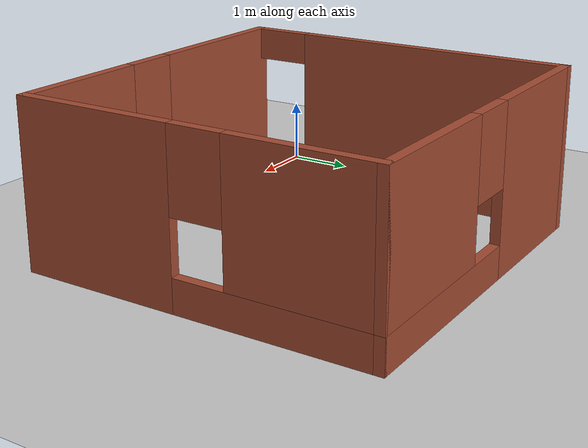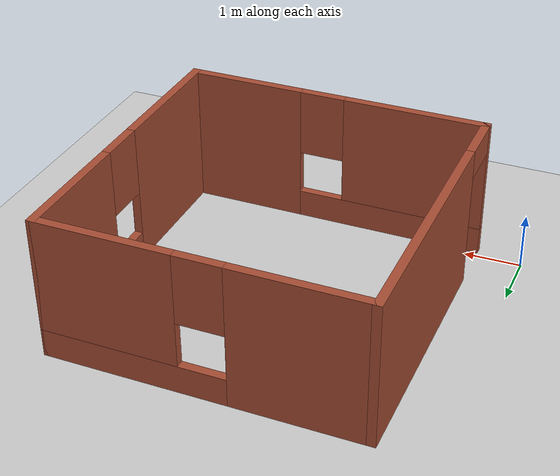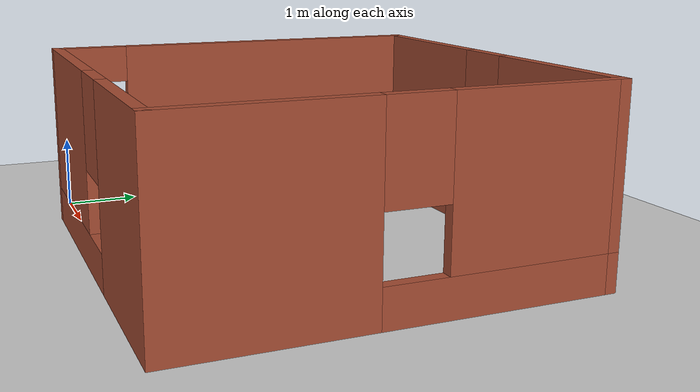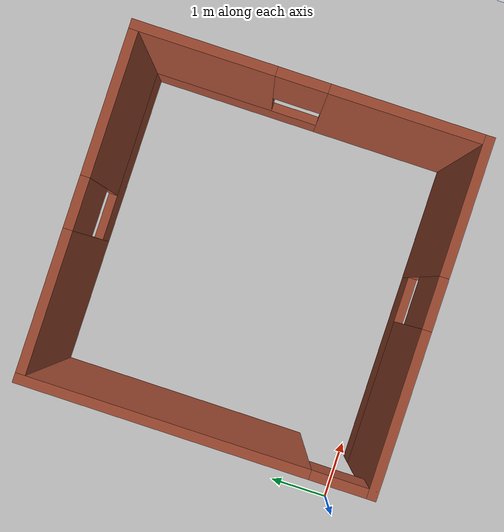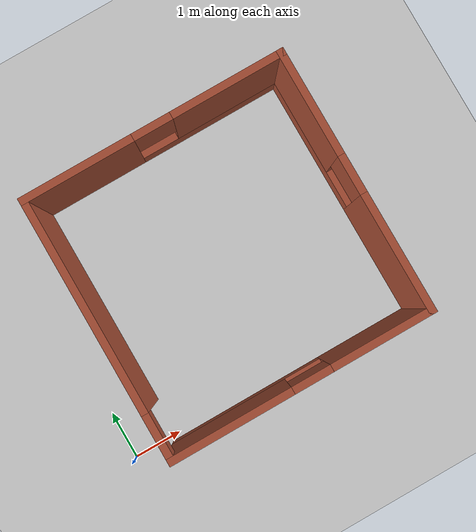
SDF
<sdf version="1.7">
 <world name="default">
  <light name="sun" type="directional">
   <pose>0 0 10 0 -0 0</pose>
   <diffuse>0.8 0.8 0.8 1</diffuse>
   <specular>0.2 0.2 0.2 1</specular>
   <attenuation>
    <range>1000</range>
    <constant>0.9</constant>
    <linear>0.01</linear>
    <quadratic>0.001</quadratic>
   </attenuation>
   <direction>-0.5 0.1 -0.9</direction>
   <spot><inner_angle>0</inner_angle><outer_angle>0</outer_angle><falloff>0</falloff></spot>
  </light>
  <model name="ground_plane">
   <static>1</static>
   <link name="link">
    <collision name="collision">
     <geometry><plane><normal>0 0 1</normal><size>100 100</size></plane></geometry>
     <surface>
      <contact><collide_bitmask>65535</collide_bitmask></contact>
      <friction><ode><mu>100</mu><mu2>50</mu2></ode></friction>
     </surface>
    </collision>
    <visual name="visual">
     <cast_shadows>0</cast_shadows>
     <geometry><plane><normal>0 0 1</normal><size>100 100</size></plane></geometry>
     <material>
      <script><uri>file://media/materials/scripts/gazebo.material</uri><name>Gazebo/Grey</name></script>
     </material>
    </visual>
   </link>
  </model>
  <gravity>0 0 -9.8</gravity>
  <magnetic_field>6e-06 2.3e-05 -4.2e-05</magnetic_field>
  <atmosphere type="adiabatic"/>
  <physics type="ode">
   <max_step_size>0.001</max_step_size>
   <real_time_factor>1</real_time_factor>
   <real_time_update_rate>1000</real_time_update_rate>
  </physics>
  <scene><ambient>0.4 0.4 0.4 1</ambient><background>0.7 0.7 0.7 1</background><shadows>1</shadows></scene>
  <spherical_coordinates>
   <surface_model>EARTH_WGS84</surface_model>
   <latitude_deg>0</latitude_deg>
   <longitude_deg>0</longitude_deg>
   <elevation>0</elevation>
   <heading_deg>0</heading_deg>
  </spherical_coordinates>
  <model name="Untitled2">
   <pose>3.1475 2.505 0 0 -0 0</pose>
   <link name="Wall_0">
    <pose>0.3975 -2.675 0 0 -0 3.14159</pose>
    <visual name="Wall_0_Visual_0">
     <pose>-1.68188 0 1.25 0 -0 0</pose>
     <geometry><box><size>2.13624 0.15 2.5</size></box></geometry>
     <material>
      <script><uri>file://media/materials/scripts/gazebo.material</uri><name>Gazebo/Bricks</name></script>
      <ambient>1 1 1 1</ambient>
     </material>
     <meta><layer>0</layer></meta>
    </visual>
    <collision name="Wall_0_Collision_0">
     <geometry><box><size>2.13624 0.15 2.5</size></box></geometry>
     <pose>-1.68188 0 1.25 0 -0 0</pose>
    </collision>
    <visual name="Wall_0_Visual_1">
     <pose>1.06812 0 0.25 0 -0 0</pose>
     <geometry><box><size>3.36376 0.15 0.5</size></box></geometry>
     <material>
      <script><uri>file://media/materials/scripts/gazebo.material</uri><name>Gazebo/Bricks</name></script>
      <ambient>1 1 1 1</ambient>
     </material>
     <meta><layer>0</layer></meta>
    </visual>
    <collision name="Wall_0_Collision_1">
     <geometry><box><size>3.36376 0.15 0.5</size></box></geometry>
     <pose>1.06812 0 0.25 0 -0 0</pose>
    </collision>
    <visual name="Wall_0_Visual_2">
     <pose>1.46812 0 1.5 0 -0 0</pose>
     <geometry><box><size>2.56376 0.15 2</size></box></geometry>
     <material>
      <script><uri>file://media/materials/scripts/gazebo.material</uri><name>Gazebo/Bricks</name></script>
      <ambient>1 1 1 1</ambient>
     </material>
     <meta><layer>0</layer></meta>
    </visual>
    <collision name="Wall_0_Collision_2">
     <geometry><box><size>2.56376 0.15 2</size></box></geometry>
     <pose>1.46812 0 1.5 0 -0 0</pose>
    </collision>
    <visual name="Wall_0_Visual_3">
     <pose>-0.213757 0 1.9 0 -0 0</pose>
     <geometry><box><size>0.8 0.15 1.2</size></box></geometry>
     <material>
      <script><uri>file://media/materials/scripts/gazebo.material</uri><name>Gazebo/Bricks</name></script>
      <ambient>1 1 1 1</ambient>
     </material>
     <meta><layer>0</layer></meta>
    </visual>
    <collision name="Wall_0_Collision_3">
     <geometry><box><size>0.8 0.15 1.2</size></box></geometry>
     <pose>-0.213757 0 1.9 0 -0 0</pose>
    </collision>
   </link>
   <link name="Wall_2">
    <pose>3.0725 0 0 0 -0 1.5708</pose>
    <visual name="Wall_2_Visual_0">
     <pose>-1.50737 0 1.25 0 -0 0</pose>
     <geometry><box><size>2.48526 0.15 2.5</size></box></geometry>
     <material>
      <script><uri>file://media/materials/scripts/gazebo.material</uri><name>Gazebo/Bricks</name></script>
      <ambient>1 1 1 1</ambient>
     </material>
     <meta><layer>0</layer></meta>
    </visual>
    <collision name="Wall_2_Collision_0">
     <geometry><box><size>2.48526 0.15 2.5</size></box></geometry>
     <pose>-1.50737 0 1.25 0 -0 0</pose>
    </collision>
    <visual name="Wall_2_Visual_1">
     <pose>1.24263 0 0.25 0 -0 0</pose>
     <geometry><box><size>3.01474 0.15 0.5</size></box></geometry>
     <material>
      <script><uri>file://media/materials/scripts/gazebo.material</uri><name>Gazebo/Bricks</name></script>
      <ambient>1 1 1 1</ambient>
     </material>
     <meta><layer>0</layer></meta>
    </visual>
    <collision name="Wall_2_Collision_1">
     <geometry><box><size>3.01474 0.15 0.5</size></box></geometry>
     <pose>1.24263 0 0.25 0 -0 0</pose>
    </collision>
    <visual name="Wall_2_Visual_2">
     <pose>1.64263 0 1.5 0 -0 0</pose>
     <geometry><box><size>2.21474 0.15 2</size></box></geometry>
     <material>
      <script><uri>file://media/materials/scripts/gazebo.material</uri><name>Gazebo/Bricks</name></script>
      <ambient>1 1 1 1</ambient>
     </material>
     <meta><layer>0</layer></meta>
    </visual>
    <collision name="Wall_2_Collision_2">
     <geometry><box><size>2.21474 0.15 2</size></box></geometry>
     <pose>1.64263 0 1.5 0 -0 0</pose>
    </collision>
    <visual name="Wall_2_Visual_3">
     <pose>0.135263 0 1.9 0 -0 0</pose>
     <geometry><box><size>0.8 0.15 1.2</size></box></geometry>
     <material>
      <script><uri>file://media/materials/scripts/gazebo.material</uri><name>Gazebo/Bricks</name></script>
      <ambient>1 1 1 1</ambient>
     </material>
     <meta><layer>0</layer></meta>
    </visual>
    <collision name="Wall_2_Collision_3">
     <geometry><box><size>0.8 0.15 1.2</size></box></geometry>
     <pose>0.135263 0 1.9 0 -0 0</pose>
    </collision>
   </link>
   <link name="Wall_4">
    <pose>-2.2775 0 0 0 -0 1.5708</pose>
    <visual name="Wall_4_Visual_0">
     <pose>-2.68823 0 1.25 0 -0 0</pose>
     <geometry><box><size>0.123533 0.15 2.5</size></box></geometry>
     <material>
      <script><uri>file://media/materials/scripts/gazebo.material</uri><name>Gazebo/Bricks</name></script>
      <ambient>1 1 1 1</ambient>
     </material>
     <meta><layer>0</layer></meta>
    </visual>
    <collision name="Wall_4_Collision_0">
     <geometry><box><size>0.123533 0.15 2.5</size></box></geometry>
     <pose>-2.68823 0 1.25 0 -0 0</pose>
    </collision>
    <visual name="Wall_4_Visual_1">
     <pose>0.511766 0 1.25 0 -0 0</pose>
     <geometry><box><size>4.47647 0.15 2.5</size></box></geometry>
     <material>
      <script><uri>file://media/materials/scripts/gazebo.material</uri><name>Gazebo/Bricks</name></script>
      <ambient>1 1 1 1</ambient>
     </material>
     <meta><layer>0</layer></meta>
    </visual>
    <collision name="Wall_4_Collision_1">
     <geometry><box><size>4.47647 0.15 2.5</size></box></geometry>
     <pose>0.511766 0 1.25 0 -0 0</pose>
    </collision>
    <visual name="Wall_4_Visual_2">
     <pose>-2.17647 0 2.25 0 -0 0</pose>
     <geometry><box><size>0.9 0.15 0.5</size></box></geometry>
     <material>
      <script><uri>file://media/materials/scripts/gazebo.material</uri><name>Gazebo/Bricks</name></script>
      <ambient>1 1 1 1</ambient>
     </material>
     <meta><layer>0</layer></meta>
    </visual>
    <collision name="Wall_4_Collision_2">
     <geometry><box><size>0.9 0.15 0.5</size></box></geometry>
     <pose>-2.17647 0 2.25 0 -0 0</pose>
    </collision>
   </link>
   <link name="Wall_5">
    <pose>0.3975 2.675 0 0 -0 0</pose>
    <visual name="Wall_5_Visual_0">
     <pose>-1.58219 0 1.25 0 -0 0</pose>
     <geometry><box><size>2.33563 0.15 2.5</size></box></geometry>
     <material>
      <script><uri>file://media/materials/scripts/gazebo.material</uri><name>Gazebo/Bricks</name></script>
      <ambient>1 1 1 1</ambient>
     </material>
     <meta><layer>0</layer></meta>
    </visual>
    <collision name="Wall_5_Collision_0">
     <geometry><box><size>2.33563 0.15 2.5</size></box></geometry>
     <pose>-1.58219 0 1.25 0 -0 0</pose>
    </collision>
    <visual name="Wall_5_Visual_1">
     <pose>1.16781 0 0.25 0 -0 0</pose>
     <geometry><box><size>3.16437 0.15 0.5</size></box></geometry>
     <material>
      <script><uri>file://media/materials/scripts/gazebo.material</uri><name>Gazebo/Bricks</name></script>
      <ambient>1 1 1 1</ambient>
     </material>
     <meta><layer>0</layer></meta>
    </visual>
    <collision name="Wall_5_Collision_1">
     <geometry><box><size>3.16437 0.15 0.5</size></box></geometry>
     <pose>1.16781 0 0.25 0 -0 0</pose>
    </collision>
    <visual name="Wall_5_Visual_2">
     <pose>1.56781 0 1.5 0 -0 0</pose>
     <geometry><box><size>2.36437 0.15 2</size></box></geometry>
     <material>
      <script><uri>file://media/materials/scripts/gazebo.material</uri><name>Gazebo/Bricks</name></script>
      <ambient>1 1 1 1</ambient>
     </material>
     <meta><layer>0</layer></meta>
    </visual>
    <collision name="Wall_5_Collision_2">
     <geometry><box><size>2.36437 0.15 2</size></box></geometry>
     <pose>1.56781 0 1.5 0 -0 0</pose>
    </collision>
    <visual name="Wall_5_Visual_3">
     <pose>-0.014374 0 1.9 0 -0 0</pose>
     <geometry><box><size>0.8 0.15 1.2</size></box></geometry>
     <material>
      <script><uri>file://media/materials/scripts/gazebo.material</uri><name>Gazebo/Bricks</name></script>
      <ambient>1 1 1 1</ambient>
     </material>
     <meta><layer>0</layer></meta>
    </visual>
    <collision name="Wall_5_Collision_3">
     <geometry><box><size>0.8 0.15 1.2</size></box></geometry>
     <pose>-0.014374 0 1.9 0 -0 0</pose>
    </collision>
   </link>
   <static>1</static>
  </model>
 </world>
</sdf>
